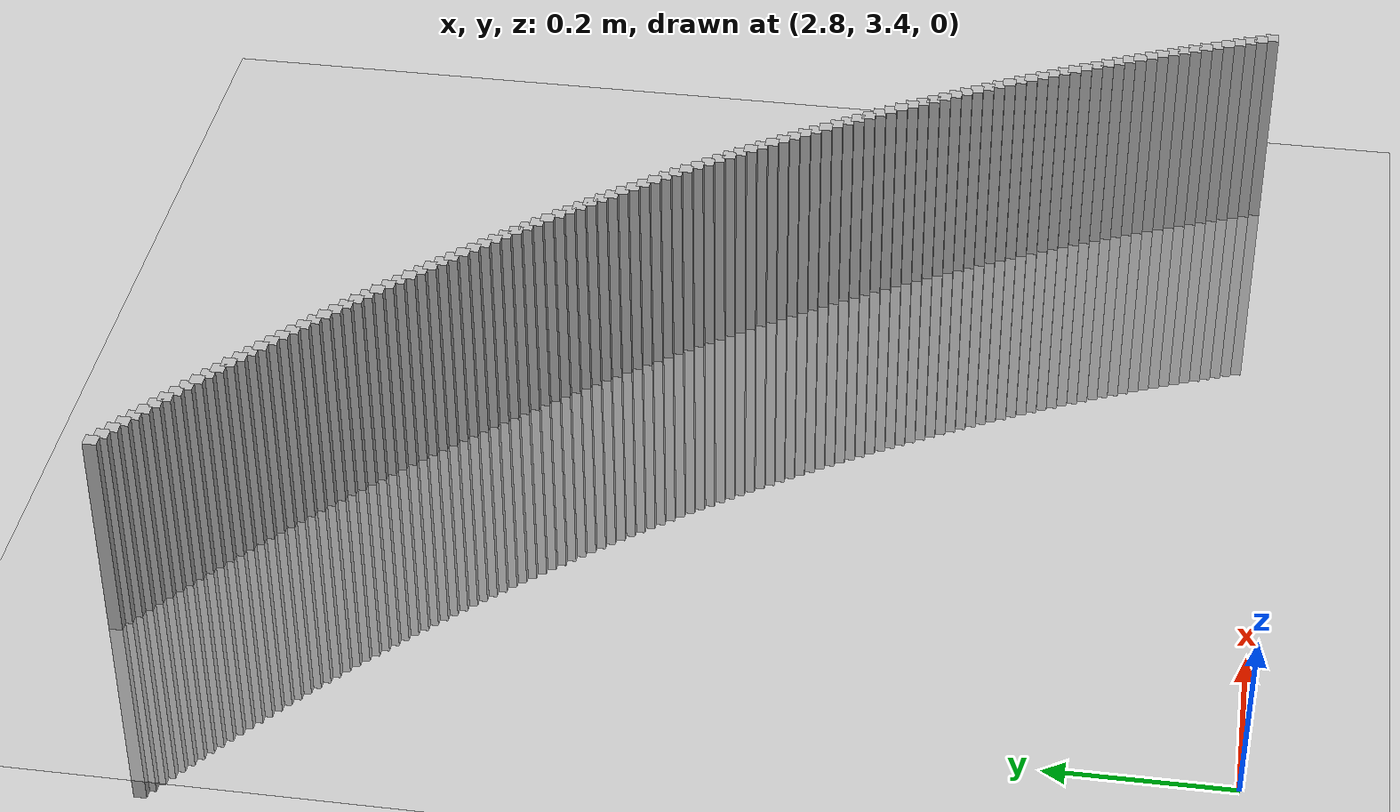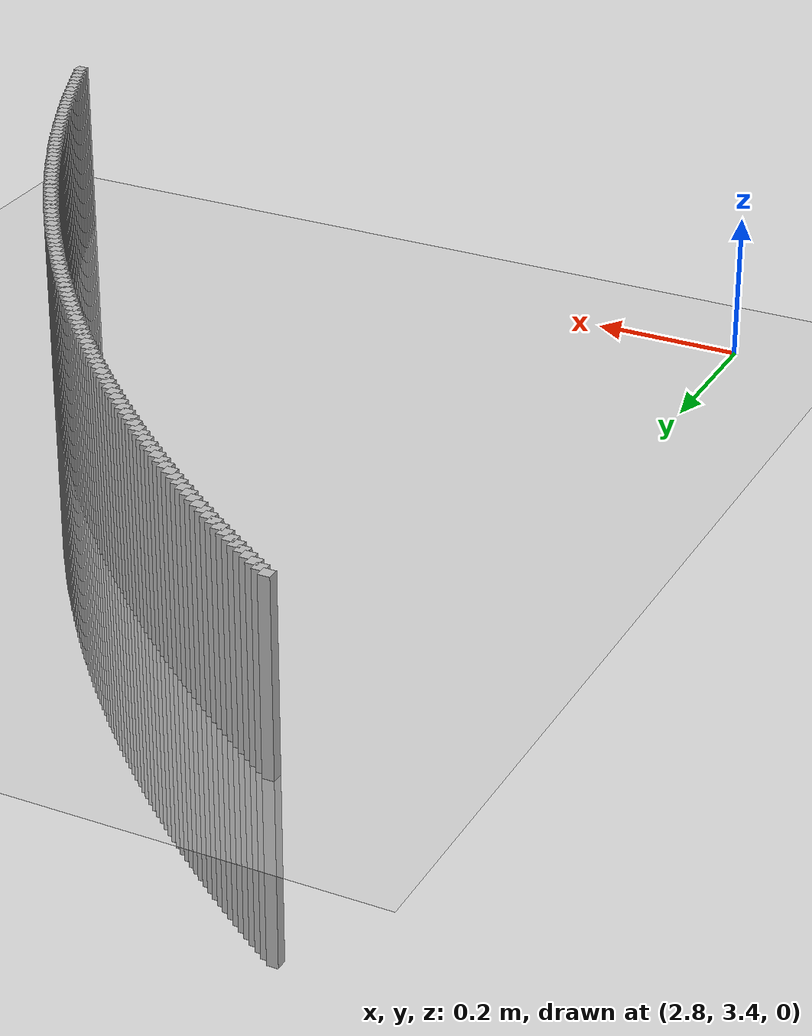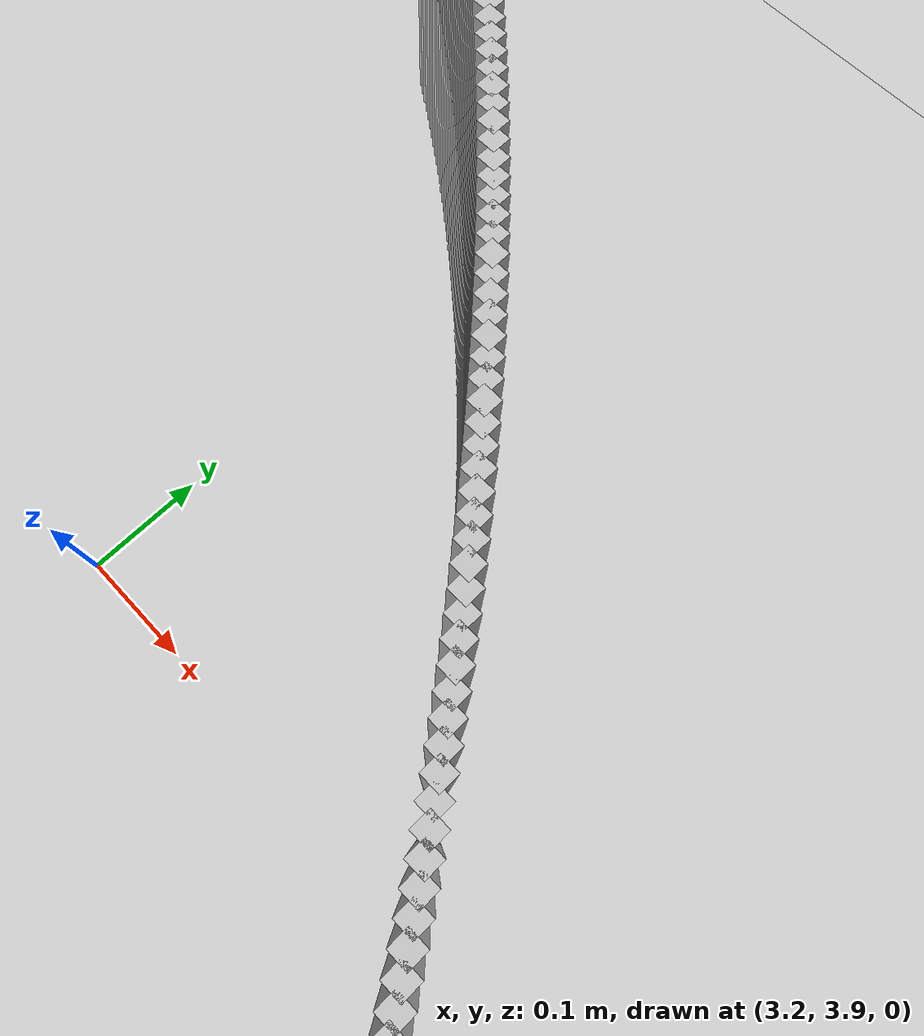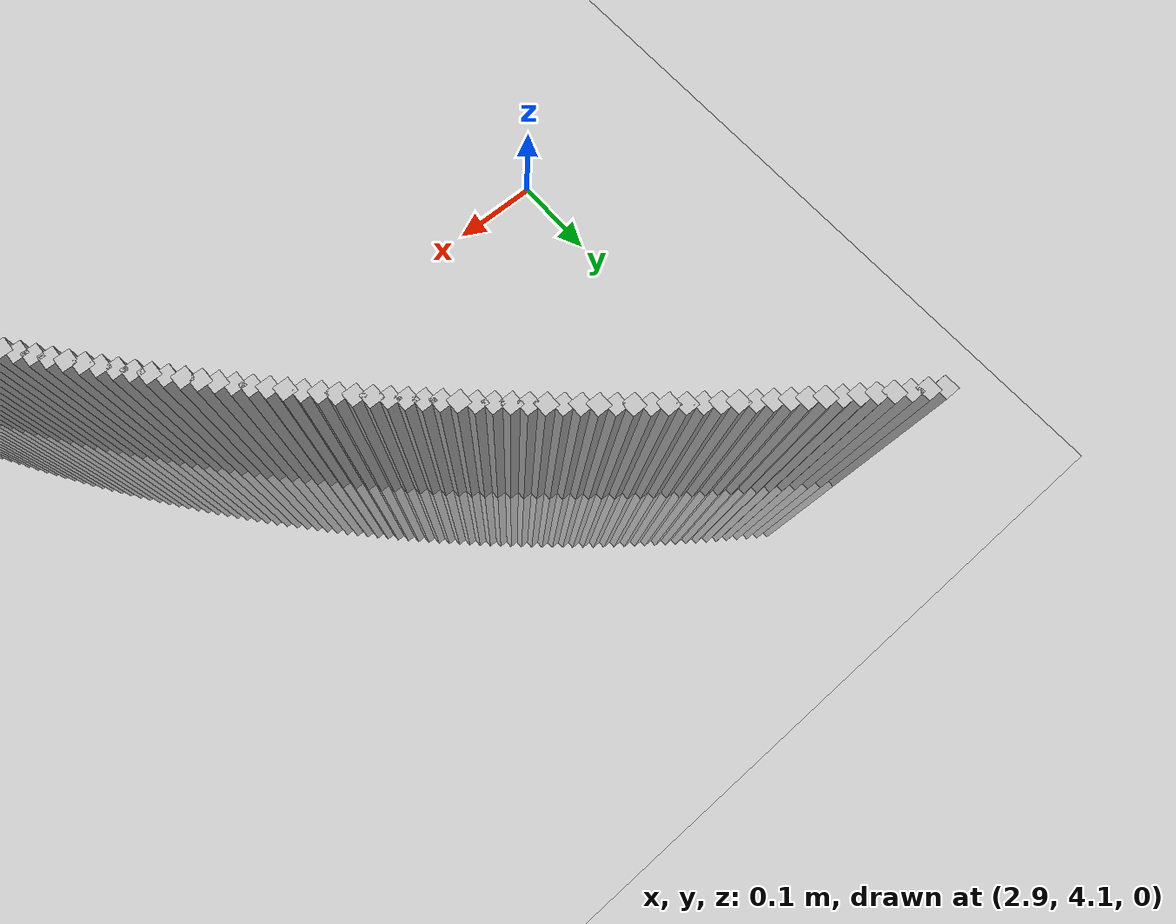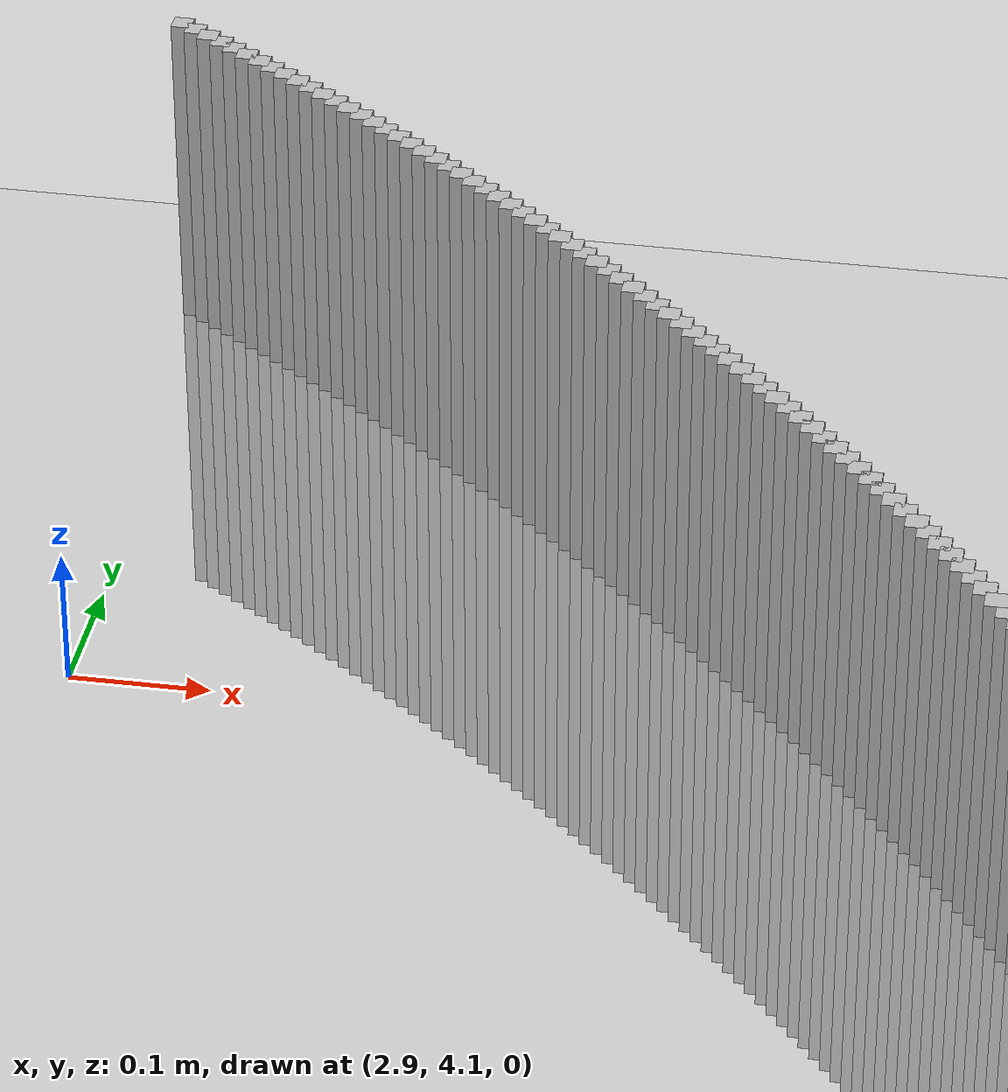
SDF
<sdf version="1.6">
 <world name="base">
  <model name="ground_plane">
   <static>1</static>
   <link name="link">
    <collision name="collision">
     <geometry><plane><normal>0 0 1</normal><size>100 100</size></plane></geometry>
     <surface>
      <contact><collide_bitmask>65535</collide_bitmask></contact>
      <friction><ode><mu>100</mu><mu2>50</mu2></ode></friction>
     </surface>
    </collision>
    <visual name="visual">
     <cast_shadows>0</cast_shadows>
     <geometry><plane><normal>0 0 1</normal><size>100 100</size></plane></geometry>
     <material>
      <script><uri>file://media/materials/scripts/gazebo.material</uri><name>Gazebo/Grey</name></script>
     </material>
    </visual>
   </link>
  </model>
  <model name="k404">
   <link name="113_link">
    <collision name="collision_113">
     <pose>2.87702 4.58658 0 0 -0 0</pose>
     <geometry><box><size>0.015 0.015 0.5</size></box></geometry>
    </collision>
    <visual name="visual_113">
     <pose>2.87702 4.58658 0 0 -0 0</pose>
     <geometry><box><size>0.015 0.015 0.5</size></box></geometry>
    </visual>
   </link>
   <link name="114_link">
    <collision name="collision_114">
     <pose>2.88859 4.5789 0 0 -0 0</pose>
     <geometry><box><size>0.015 0.015 0.5</size></box></geometry>
    </collision>
    <visual name="visual_114">
     <pose>2.88859 4.5789 0 0 -0 0</pose>
     <geometry><box><size>0.015 0.015 0.5</size></box></geometry>
    </visual>
   </link>
   <link name="115_link">
    <collision name="collision_115">
     <pose>2.90012 4.57115 0 0 -0 0</pose>
     <geometry><box><size>0.015 0.015 0.5</size></box></geometry>
    </collision>
    <visual name="visual_115">
     <pose>2.90012 4.57115 0 0 -0 0</pose>
     <geometry><box><size>0.015 0.015 0.5</size></box></geometry>
    </visual>
   </link>
   <link name="116_link">
    <collision name="collision_116">
     <pose>2.91161 4.56334 0 0 -0 0</pose>
     <geometry><box><size>0.015 0.015 0.5</size></box></geometry>
    </collision>
    <visual name="visual_116">
     <pose>2.91161 4.56334 0 0 -0 0</pose>
     <geometry><box><size>0.015 0.015 0.5</size></box></geometry>
    </visual>
   </link>
   <link name="117_link">
    <collision name="collision_117">
     <pose>2.92305 4.55546 0 0 -0 0</pose>
     <geometry><box><size>0.015 0.015 0.5</size></box></geometry>
    </collision>
    <visual name="visual_117">
     <pose>2.92305 4.55546 0 0 -0 0</pose>
     <geometry><box><size>0.015 0.015 0.5</size></box></geometry>
    </visual>
   </link>
   <link name="118_link">
    <collision name="collision_118">
     <pose>2.93445 4.54753 0 0 -0 0</pose>
     <geometry><box><size>0.015 0.015 0.5</size></box></geometry>
    </collision>
    <visual name="visual_118">
     <pose>2.93445 4.54753 0 0 -0 0</pose>
     <geometry><box><size>0.015 0.015 0.5</size></box></geometry>
    </visual>
   </link>
   <link name="119_link">
    <collision name="collision_119">
     <pose>2.9458 4.53953 0 0 -0 0</pose>
     <geometry><box><size>0.015 0.015 0.5</size></box></geometry>
    </collision>
    <visual name="visual_119">
     <pose>2.9458 4.53953 0 0 -0 0</pose>
     <geometry><box><size>0.015 0.015 0.5</size></box></geometry>
    </visual>
   </link>
   <link name="120_link">
    <collision name="collision_120">
     <pose>2.95711 4.53146 0 0 -0 0</pose>
     <geometry><box><size>0.015 0.015 0.5</size></box></geometry>
    </collision>
    <visual name="visual_120">
     <pose>2.95711 4.53146 0 0 -0 0</pose>
     <geometry><box><size>0.015 0.015 0.5</size></box></geometry>
    </visual>
   </link>
   <link name="121_link">
    <collision name="collision_121">
     <pose>2.96837 4.52334 0 0 -0 0</pose>
     <geometry><box><size>0.015 0.015 0.5</size></box></geometry>
    </collision>
    <visual name="visual_121">
     <pose>2.96837 4.52334 0 0 -0 0</pose>
     <geometry><box><size>0.015 0.015 0.5</size></box></geometry>
    </visual>
   </link>
   <link name="122_link">
    <collision name="collision_122">
     <pose>2.97959 4.51515 0 0 -0 0</pose>
     <geometry><box><size>0.015 0.015 0.5</size></box></geometry>
    </collision>
    <visual name="visual_122">
     <pose>2.97959 4.51515 0 0 -0 0</pose>
     <geometry><box><size>0.015 0.015 0.5</size></box></geometry>
    </visual>
   </link>
   <link name="123_link">
    <collision name="collision_123">
     <pose>2.99076 4.5069 0 0 -0 0</pose>
     <geometry><box><size>0.015 0.015 0.5</size></box></geometry>
    </collision>
    <visual name="visual_123">
     <pose>2.99076 4.5069 0 0 -0 0</pose>
     <geometry><box><size>0.015 0.015 0.5</size></box></geometry>
    </visual>
   </link>
   <link name="124_link">
    <collision name="collision_124">
     <pose>3.00189 4.49858 0 0 -0 0</pose>
     <geometry><box><size>0.015 0.015 0.5</size></box></geometry>
    </collision>
    <visual name="visual_124">
     <pose>3.00189 4.49858 0 0 -0 0</pose>
     <geometry><box><size>0.015 0.015 0.5</size></box></geometry>
    </visual>
   </link>
   <link name="125_link">
    <collision name="collision_125">
     <pose>3.01297 4.49021 0 0 -0 0</pose>
     <geometry><box><size>0.015 0.015 0.5</size></box></geometry>
    </collision>
    <visual name="visual_125">
     <pose>3.01297 4.49021 0 0 -0 0</pose>
     <geometry><box><size>0.015 0.015 0.5</size></box></geometry>
    </visual>
   </link>
   <link name="126_link">
    <collision name="collision_126">
     <pose>3.024 4.48177 0 0 -0 0</pose>
     <geometry><box><size>0.015 0.015 0.5</size></box></geometry>
    </collision>
    <visual name="visual_126">
     <pose>3.024 4.48177 0 0 -0 0</pose>
     <geometry><box><size>0.015 0.015 0.5</size></box></geometry>
    </visual>
   </link>
   <link name="127_link">
    <collision name="collision_127">
     <pose>3.03499 4.47328 0 0 -0 0</pose>
     <geometry><box><size>0.015 0.015 0.5</size></box></geometry>
    </collision>
    <visual name="visual_127">
     <pose>3.03499 4.47328 0 0 -0 0</pose>
     <geometry><box><size>0.015 0.015 0.5</size></box></geometry>
    </visual>
   </link>
   <link name="128_link">
    <collision name="collision_128">
     <pose>3.04592 4.46472 0 0 -0 0</pose>
     <geometry><box><size>0.015 0.015 0.5</size></box></geometry>
    </collision>
    <visual name="visual_128">
     <pose>3.04592 4.46472 0 0 -0 0</pose>
     <geometry><box><size>0.015 0.015 0.5</size></box></geometry>
    </visual>
   </link>
   <link name="129_link">
    <collision name="collision_129">
     <pose>3.05682 4.4561 0 0 -0 0</pose>
     <geometry><box><size>0.015 0.015 0.5</size></box></geometry>
    </collision>
    <visual name="visual_129">
     <pose>3.05682 4.4561 0 0 -0 0</pose>
     <geometry><box><size>0.015 0.015 0.5</size></box></geometry>
    </visual>
   </link>
   <link name="130_link">
    <collision name="collision_130">
     <pose>3.06766 4.44742 0 0 -0 0</pose>
     <geometry><box><size>0.015 0.015 0.5</size></box></geometry>
    </collision>
    <visual name="visual_130">
     <pose>3.06766 4.44742 0 0 -0 0</pose>
     <geometry><box><size>0.015 0.015 0.5</size></box></geometry>
    </visual>
   </link>
   <link name="131_link">
    <collision name="collision_131">
     <pose>3.07845 4.43868 0 0 -0 0</pose>
     <geometry><box><size>0.015 0.015 0.5</size></box></geometry>
    </collision>
    <visual name="visual_131">
     <pose>3.07845 4.43868 0 0 -0 0</pose>
     <geometry><box><size>0.015 0.015 0.5</size></box></geometry>
    </visual>
   </link>
   <link name="132_link">
    <collision name="collision_132">
     <pose>3.0892 4.42988 0 0 -0 0</pose>
     <geometry><box><size>0.015 0.015 0.5</size></box></geometry>
    </collision>
    <visual name="visual_132">
     <pose>3.0892 4.42988 0 0 -0 0</pose>
     <geometry><box><size>0.015 0.015 0.5</size></box></geometry>
    </visual>
   </link>
   <link name="133_link">
    <collision name="collision_133">
     <pose>3.0999 4.42102 0 0 -0 0</pose>
     <geometry><box><size>0.015 0.015 0.5</size></box></geometry>
    </collision>
    <visual name="visual_133">
     <pose>3.0999 4.42102 0 0 -0 0</pose>
     <geometry><box><size>0.015 0.015 0.5</size></box></geometry>
    </visual>
   </link>
   <link name="134_link">
    <collision name="collision_134">
     <pose>3.11054 4.41211 0 0 -0 0</pose>
     <geometry><box><size>0.015 0.015 0.5</size></box></geometry>
    </collision>
    <visual name="visual_134">
     <pose>3.11054 4.41211 0 0 -0 0</pose>
     <geometry><box><size>0.015 0.015 0.5</size></box></geometry>
    </visual>
   </link>
   <link name="135_link">
    <collision name="collision_135">
     <pose>3.12114 4.40313 0 0 -0 0</pose>
     <geometry><box><size>0.015 0.015 0.5</size></box></geometry>
    </collision>
    <visual name="visual_135">
     <pose>3.12114 4.40313 0 0 -0 0</pose>
     <geometry><box><size>0.015 0.015 0.5</size></box></geometry>
    </visual>
   </link>
   <link name="136_link">
    <collision name="collision_136">
     <pose>3.13169 4.39409 0 0 -0 0</pose>
     <geometry><box><size>0.015 0.015 0.5</size></box></geometry>
    </collision>
    <visual name="visual_136">
     <pose>3.13169 4.39409 0 0 -0 0</pose>
     <geometry><box><size>0.015 0.015 0.5</size></box></geometry>
    </visual>
   </link>
   <link name="137_link">
    <collision name="collision_137">
     <pose>3.14219 4.385 0 0 -0 0</pose>
     <geometry><box><size>0.015 0.015 0.5</size></box></geometry>
    </collision>
    <visual name="visual_137">
     <pose>3.14219 4.385 0 0 -0 0</pose>
     <geometry><box><size>0.015 0.015 0.5</size></box></geometry>
    </visual>
   </link>
   <link name="138_link">
    <collision name="collision_138">
     <pose>3.15263 4.37585 0 0 -0 0</pose>
     <geometry><box><size>0.015 0.015 0.5</size></box></geometry>
    </collision>
    <visual name="visual_138">
     <pose>3.15263 4.37585 0 0 -0 0</pose>
     <geometry><box><size>0.015 0.015 0.5</size></box></geometry>
    </visual>
   </link>
   <link name="139_link">
    <collision name="collision_139">
     <pose>3.16303 4.36664 0 0 -0 0</pose>
     <geometry><box><size>0.015 0.015 0.5</size></box></geometry>
    </collision>
    <visual name="visual_139">
     <pose>3.16303 4.36664 0 0 -0 0</pose>
     <geometry><box><size>0.015 0.015 0.5</size></box></geometry>
    </visual>
   </link>
   <link name="140_link">
    <collision name="collision_140">
     <pose>3.17338 4.35737 0 0 -0 0</pose>
     <geometry><box><size>0.015 0.015 0.5</size></box></geometry>
    </collision>
    <visual name="visual_140">
     <pose>3.17338 4.35737 0 0 -0 0</pose>
     <geometry><box><size>0.015 0.015 0.5</size></box></geometry>
    </visual>
   </link>
   <link name="141_link">
    <collision name="collision_141">
     <pose>3.18367 4.34804 0 0 -0 0</pose>
     <geometry><box><size>0.015 0.015 0.5</size></box></geometry>
    </collision>
    <visual name="visual_141">
     <pose>3.18367 4.34804 0 0 -0 0</pose>
     <geometry><box><size>0.015 0.015 0.5</size></box></geometry>
    </visual>
   </link>
   <link name="142_link">
    <collision name="collision_142">
     <pose>3.19391 4.33866 0 0 -0 0</pose>
     <geometry><box><size>0.015 0.015 0.5</size></box></geometry>
    </collision>
    <visual name="visual_142">
     <pose>3.19391 4.33866 0 0 -0 0</pose>
     <geometry><box><size>0.015 0.015 0.5</size></box></geometry>
    </visual>
   </link>
   <link name="143_link">
    <collision name="collision_143">
     <pose>3.2041 4.32922 0 0 -0 0</pose>
     <geometry><box><size>0.015 0.015 0.5</size></box></geometry>
    </collision>
    <visual name="visual_143">
     <pose>3.2041 4.32922 0 0 -0 0</pose>
     <geometry><box><size>0.015 0.015 0.5</size></box></geometry>
    </visual>
   </link>
   <link name="144_link">
    <collision name="collision_144">
     <pose>3.21423 4.31973 0 0 -0 0</pose>
     <geometry><box><size>0.015 0.015 0.5</size></box></geometry>
    </collision>
    <visual name="visual_144">
     <pose>3.21423 4.31973 0 0 -0 0</pose>
     <geometry><box><size>0.015 0.015 0.5</size></box></geometry>
    </visual>
   </link>
   <link name="145_link">
    <collision name="collision_145">
     <pose>3.22432 4.31018 0 0 -0 0</pose>
     <geometry><box><size>0.015 0.015 0.5</size></box></geometry>
    </collision>
    <visual name="visual_145">
     <pose>3.22432 4.31018 0 0 -0 0</pose>
     <geometry><box><size>0.015 0.015 0.5</size></box></geometry>
    </visual>
   </link>
   <link name="146_link">
    <collision name="collision_146">
     <pose>3.23435 4.30057 0 0 -0 0</pose>
     <geometry><box><size>0.015 0.015 0.5</size></box></geometry>
    </collision>
    <visual name="visual_146">
     <pose>3.23435 4.30057 0 0 -0 0</pose>
     <geometry><box><size>0.015 0.015 0.5</size></box></geometry>
    </visual>
   </link>
   <link name="147_link">
    <collision name="collision_147">
     <pose>3.24432 4.29091 0 0 -0 0</pose>
     <geometry><box><size>0.015 0.015 0.5</size></box></geometry>
    </collision>
    <visual name="visual_147">
     <pose>3.24432 4.29091 0 0 -0 0</pose>
     <geometry><box><size>0.015 0.015 0.5</size></box></geometry>
    </visual>
   </link>
   <link name="148_link">
    <collision name="collision_148">
     <pose>3.25425 4.28119 0 0 -0 0</pose>
     <geometry><box><size>0.015 0.015 0.5</size></box></geometry>
    </collision>
    <visual name="visual_148">
     <pose>3.25425 4.28119 0 0 -0 0</pose>
     <geometry><box><size>0.015 0.015 0.5</size></box></geometry>
    </visual>
   </link>
   <link name="149_link">
    <collision name="collision_149">
     <pose>3.26411 4.27141 0 0 -0 0</pose>
     <geometry><box><size>0.015 0.015 0.5</size></box></geometry>
    </collision>
    <visual name="visual_149">
     <pose>3.26411 4.27141 0 0 -0 0</pose>
     <geometry><box><size>0.015 0.015 0.5</size></box></geometry>
    </visual>
   </link>
   <link name="150_link">
    <collision name="collision_150">
     <pose>3.27393 4.26159 0 0 -0 0</pose>
     <geometry><box><size>0.015 0.015 0.5</size></box></geometry>
    </collision>
    <visual name="visual_150">
     <pose>3.27393 4.26159 0 0 -0 0</pose>
     <geometry><box><size>0.015 0.015 0.5</size></box></geometry>
    </visual>
   </link>
   <link name="151_link">
    <collision name="collision_151">
     <pose>3.28369 4.2517 0 0 -0 0</pose>
     <geometry><box><size>0.015 0.015 0.5</size></box></geometry>
    </collision>
    <visual name="visual_151">
     <pose>3.28369 4.2517 0 0 -0 0</pose>
     <geometry><box><size>0.015 0.015 0.5</size></box></geometry>
    </visual>
   </link>
   <link name="152_link">
    <collision name="collision_152">
     <pose>3.29339 4.24177 0 0 -0 0</pose>
     <geometry><box><size>0.015 0.015 0.5</size></box></geometry>
    </collision>
    <visual name="visual_152">
     <pose>3.29339 4.24177 0 0 -0 0</pose>
     <geometry><box><size>0.015 0.015 0.5</size></box></geometry>
    </visual>
   </link>
   <link name="153_link">
    <collision name="collision_153">
     <pose>3.30304 4.23178 0 0 -0 0</pose>
     <geometry><box><size>0.015 0.015 0.5</size></box></geometry>
    </collision>
    <visual name="visual_153">
     <pose>3.30304 4.23178 0 0 -0 0</pose>
     <geometry><box><size>0.015 0.015 0.5</size></box></geometry>
    </visual>
   </link>
   <link name="154_link">
    <collision name="collision_154">
     <pose>3.31263 4.22173 0 0 -0 0</pose>
     <geometry><box><size>0.015 0.015 0.5</size></box></geometry>
    </collision>
    <visual name="visual_154">
     <pose>3.31263 4.22173 0 0 -0 0</pose>
     <geometry><box><size>0.015 0.015 0.5</size></box></geometry>
    </visual>
   </link>
   <link name="155_link">
    <collision name="collision_155">
     <pose>3.32217 4.21164 0 0 -0 0</pose>
     <geometry><box><size>0.015 0.015 0.5</size></box></geometry>
    </collision>
    <visual name="visual_155">
     <pose>3.32217 4.21164 0 0 -0 0</pose>
     <geometry><box><size>0.015 0.015 0.5</size></box></geometry>
    </visual>
   </link>
   <link name="156_link">
    <collision name="collision_156">
     <pose>3.33165 4.20149 0 0 -0 0</pose>
     <geometry><box><size>0.015 0.015 0.5</size></box></geometry>
    </collision>
    <visual name="visual_156">
     <pose>3.33165 4.20149 0 0 -0 0</pose>
     <geometry><box><size>0.015 0.015 0.5</size></box></geometry>
    </visual>
   </link>
   <link name="157_link">
    <collision name="collision_157">
     <pose>3.34108 4.19128 0 0 -0 0</pose>
     <geometry><box><size>0.015 0.015 0.5</size></box></geometry>
    </collision>
    <visual name="visual_157">
     <pose>3.34108 4.19128 0 0 -0 0</pose>
     <geometry><box><size>0.015 0.015 0.5</size></box></geometry>
    </visual>
   </link>
   <link name="158_link">
    <collision name="collision_158">
     <pose>3.35044 4.18103 0 0 -0 0</pose>
     <geometry><box><size>0.015 0.015 0.5</size></box></geometry>
    </collision>
    <visual name="visual_158">
     <pose>3.35044 4.18103 0 0 -0 0</pose>
     <geometry><box><size>0.015 0.015 0.5</size></box></geometry>
    </visual>
   </link>
   <link name="159_link">
    <collision name="collision_159">
     <pose>3.35975 4.17072 0 0 -0 0</pose>
     <geometry><box><size>0.015 0.015 0.5</size></box></geometry>
    </collision>
    <visual name="visual_159">
     <pose>3.35975 4.17072 0 0 -0 0</pose>
     <geometry><box><size>0.015 0.015 0.5</size></box></geometry>
    </visual>
   </link>
   <link name="160_link">
    <collision name="collision_160">
     <pose>3.36901 4.16037 0 0 -0 0</pose>
     <geometry><box><size>0.015 0.015 0.5</size></box></geometry>
    </collision>
    <visual name="visual_160">
     <pose>3.36901 4.16037 0 0 -0 0</pose>
     <geometry><box><size>0.015 0.015 0.5</size></box></geometry>
    </visual>
   </link>
   <link name="161_link">
    <collision name="collision_161">
     <pose>3.3782 4.14996 0 0 -0 0</pose>
     <geometry><box><size>0.015 0.015 0.5</size></box></geometry>
    </collision>
    <visual name="visual_161">
     <pose>3.3782 4.14996 0 0 -0 0</pose>
     <geometry><box><size>0.015 0.015 0.5</size></box></geometry>
    </visual>
   </link>
   <link name="162_link">
    <collision name="collision_162">
     <pose>3.38734 4.1395 0 0 -0 0</pose>
     <geometry><box><size>0.015 0.015 0.5</size></box></geometry>
    </collision>
    <visual name="visual_162">
     <pose>3.38734 4.1395 0 0 -0 0</pose>
     <geometry><box><size>0.015 0.015 0.5</size></box></geometry>
    </visual>
   </link>
   <link name="163_link">
    <collision name="collision_163">
     <pose>3.39642 4.12899 0 0 -0 0</pose>
     <geometry><box><size>0.015 0.015 0.5</size></box></geometry>
    </collision>
    <visual name="visual_163">
     <pose>3.39642 4.12899 0 0 -0 0</pose>
     <geometry><box><size>0.015 0.015 0.5</size></box></geometry>
    </visual>
   </link>
   <link name="164_link">
    <collision name="collision_164">
     <pose>3.40544 4.11843 0 0 -0 0</pose>
     <geometry><box><size>0.015 0.015 0.5</size></box></geometry>
    </collision>
    <visual name="visual_164">
     <pose>3.40544 4.11843 0 0 -0 0</pose>
     <geometry><box><size>0.015 0.015 0.5</size></box></geometry>
    </visual>
   </link>
   <link name="165_link">
    <collision name="collision_165">
     <pose>3.4144 4.10782 0 0 -0 0</pose>
     <geometry><box><size>0.015 0.015 0.5</size></box></geometry>
    </collision>
    <visual name="visual_165">
     <pose>3.4144 4.10782 0 0 -0 0</pose>
     <geometry><box><size>0.015 0.015 0.5</size></box></geometry>
    </visual>
   </link>
   <link name="166_link">
    <collision name="collision_166">
     <pose>3.4233 4.09716 0 0 -0 0</pose>
     <geometry><box><size>0.015 0.015 0.5</size></box></geometry>
    </collision>
    <visual name="visual_166">
     <pose>3.4233 4.09716 0 0 -0 0</pose>
     <geometry><box><size>0.015 0.015 0.5</size></box></geometry>
    </visual>
   </link>
   <link name="167_link">
    <collision name="collision_167">
     <pose>3.43215 4.08645 0 0 -0 0</pose>
     <geometry><box><size>0.015 0.015 0.5</size></box></geometry>
    </collision>
    <visual name="visual_167">
     <pose>3.43215 4.08645 0 0 -0 0</pose>
     <geometry><box><size>0.015 0.015 0.5</size></box></geometry>
    </visual>
   </link>
   <link name="168_link">
    <collision name="collision_168">
     <pose>3.44093 4.07569 0 0 -0 0</pose>
     <geometry><box><size>0.015 0.015 0.5</size></box></geometry>
    </collision>
    <visual name="visual_168">
     <pose>3.44093 4.07569 0 0 -0 0</pose>
     <geometry><box><size>0.015 0.015 0.5</size></box></geometry>
    </visual>
   </link>
   <link name="169_link">
    <collision name="collision_169">
     <pose>3.44965 4.06488 0 0 -0 0</pose>
     <geometry><box><size>0.015 0.015 0.5</size></box></geometry>
    </collision>
    <visual name="visual_169">
     <pose>3.44965 4.06488 0 0 -0 0</pose>
     <geometry><box><size>0.015 0.015 0.5</size></box></geometry>
    </visual>
   </link>
   <link name="170_link">
    <collision name="collision_170">
     <pose>3.45832 4.05403 0 0 -0 0</pose>
     <geometry><box><size>0.015 0.015 0.5</size></box></geometry>
    </collision>
    <visual name="visual_170">
     <pose>3.45832 4.05403 0 0 -0 0</pose>
     <geometry><box><size>0.015 0.015 0.5</size></box></geometry>
    </visual>
   </link>
   <link name="171_link">
    <collision name="collision_171">
     <pose>3.46692 4.04312 0 0 -0 0</pose>
     <geometry><box><size>0.015 0.015 0.5</size></box></geometry>
    </collision>
    <visual name="visual_171">
     <pose>3.46692 4.04312 0 0 -0 0</pose>
     <geometry><box><size>0.015 0.015 0.5</size></box></geometry>
    </visual>
   </link>
   <link name="172_link">
    <collision name="collision_172">
     <pose>3.47546 4.03217 0 0 -0 0</pose>
     <geometry><box><size>0.015 0.015 0.5</size></box></geometry>
    </collision>
    <visual name="visual_172">
     <pose>3.47546 4.03217 0 0 -0 0</pose>
     <geometry><box><size>0.015 0.015 0.5</size></box></geometry>
    </visual>
   </link>
   <link name="173_link">
    <collision name="collision_173">
     <pose>3.48394 4.02117 0 0 -0 0</pose>
     <geometry><box><size>0.015 0.015 0.5</size></box></geometry>
    </collision>
    <visual name="visual_173">
     <pose>3.48394 4.02117 0 0 -0 0</pose>
     <geometry><box><size>0.015 0.015 0.5</size></box></geometry>
    </visual>
   </link>
   <link name="174_link">
    <collision name="collision_174">
     <pose>3.49236 4.01013 0 0 -0 0</pose>
     <geometry><box><size>0.015 0.015 0.5</size></box></geometry>
    </collision>
    <visual name="visual_174">
     <pose>3.49236 4.01013 0 0 -0 0</pose>
     <geometry><box><size>0.015 0.015 0.5</size></box></geometry>
    </visual>
   </link>
   <link name="175_link">
    <collision name="collision_175">
     <pose>3.50072 3.99904 0 0 -0 0</pose>
     <geometry><box><size>0.015 0.015 0.5</size></box></geometry>
    </collision>
    <visual name="visual_175">
     <pose>3.50072 3.99904 0 0 -0 0</pose>
     <geometry><box><size>0.015 0.015 0.5</size></box></geometry>
    </visual>
   </link>
   <link name="176_link">
    <collision name="collision_176">
     <pose>3.50902 3.9879 0 0 -0 0</pose>
     <geometry><box><size>0.015 0.015 0.5</size></box></geometry>
    </collision>
    <visual name="visual_176">
     <pose>3.50902 3.9879 0 0 -0 0</pose>
     <geometry><box><size>0.015 0.015 0.5</size></box></geometry>
    </visual>
   </link>
   <link name="177_link">
    <collision name="collision_177">
     <pose>3.51726 3.97671 0 0 -0 0</pose>
     <geometry><box><size>0.015 0.015 0.5</size></box></geometry>
    </collision>
    <visual name="visual_177">
     <pose>3.51726 3.97671 0 0 -0 0</pose>
     <geometry><box><size>0.015 0.015 0.5</size></box></geometry>
    </visual>
   </link>
   <link name="178_link">
    <collision name="collision_178">
     <pose>3.52543 3.96548 0 0 -0 0</pose>
     <geometry><box><size>0.015 0.015 0.5</size></box></geometry>
    </collision>
    <visual name="visual_178">
     <pose>3.52543 3.96548 0 0 -0 0</pose>
     <geometry><box><size>0.015 0.015 0.5</size></box></geometry>
    </visual>
   </link>
   <link name="179_link">
    <collision name="collision_179">
     <pose>3.53354 3.95421 0 0 -0 0</pose>
     <geometry><box><size>0.015 0.015 0.5</size></box></geometry>
    </collision>
    <visual name="visual_179">
     <pose>3.53354 3.95421 0 0 -0 0</pose>
     <geometry><box><size>0.015 0.015 0.5</size></box></geometry>
    </visual>
   </link>
   <link name="180_link">
    <collision name="collision_180">
     <pose>3.54159 3.94289 0 0 -0 0</pose>
     <geometry><box><size>0.015 0.015 0.5</size></box></geometry>
    </collision>
    <visual name="visual_180">
     <pose>3.54159 3.94289 0 0 -0 0</pose>
     <geometry><box><size>0.015 0.015 0.5</size></box></geometry>
    </visual>
   </link>
   <link name="181_link">
    <collision name="collision_181">
     <pose>3.54957 3.93152 0 0 -0 0</pose>
     <geometry><box><size>0.015 0.015 0.5</size></box></geometry>
    </collision>
    <visual name="visual_181">
     <pose>3.54957 3.93152 0 0 -0 0</pose>
     <geometry><box><size>0.015 0.015 0.5</size></box></geometry>
    </visual>
   </link>
   <link name="182_link">
    <collision name="collision_182">
     <pose>3.55749 3.92012 0 0 -0 0</pose>
     <geometry><box><size>0.015 0.015 0.5</size></box></geometry>
    </collision>
    <visual name="visual_182">
     <pose>3.55749 3.92012 0 0 -0 0</pose>
     <geometry><box><size>0.015 0.015 0.5</size></box></geometry>
    </visual>
   </link>
   <link name="183_link">
    <collision name="collision_183">
     <pose>3.56535 3.90866 0 0 -0 0</pose>
     <geometry><box><size>0.015 0.015 0.5</size></box></geometry>
    </collision>
    <visual name="visual_183">
     <pose>3.56535 3.90866 0 0 -0 0</pose>
     <geometry><box><size>0.015 0.015 0.5</size></box></geometry>
    </visual>
   </link>
   <link name="184_link">
    <collision name="collision_184">
     <pose>3.57314 3.89717 0 0 -0 0</pose>
     <geometry><box><size>0.015 0.015 0.5</size></box></geometry>
    </collision>
    <visual name="visual_184">
     <pose>3.57314 3.89717 0 0 -0 0</pose>
     <geometry><box><size>0.015 0.015 0.5</size></box></geometry>
    </visual>
   </link>
   <link name="185_link">
    <collision name="collision_185">
     <pose>3.58087 3.88563 0 0 -0 0</pose>
     <geometry><box><size>0.015 0.015 0.5</size></box></geometry>
    </collision>
    <visual name="visual_185">
     <pose>3.58087 3.88563 0 0 -0 0</pose>
     <geometry><box><size>0.015 0.015 0.5</size></box></geometry>
    </visual>
   </link>
   <link name="186_link">
    <collision name="collision_186">
     <pose>3.58854 3.87405 0 0 -0 0</pose>
     <geometry><box><size>0.015 0.015 0.5</size></box></geometry>
    </collision>
    <visual name="visual_186">
     <pose>3.58854 3.87405 0 0 -0 0</pose>
     <geometry><box><size>0.015 0.015 0.5</size></box></geometry>
    </visual>
   </link>
   <link name="187_link">
    <collision name="collision_187">
     <pose>3.59614 3.86242 0 0 -0 0</pose>
     <geometry><box><size>0.015 0.015 0.5</size></box></geometry>
    </collision>
    <visual name="visual_187">
     <pose>3.59614 3.86242 0 0 -0 0</pose>
     <geometry><box><size>0.015 0.015 0.5</size></box></geometry>
    </visual>
   </link>
   <link name="188_link">
    <collision name="collision_188">
     <pose>3.60368 3.85076 0 0 -0 0</pose>
     <geometry><box><size>0.015 0.015 0.5</size></box></geometry>
    </collision>
    <visual name="visual_188">
     <pose>3.60368 3.85076 0 0 -0 0</pose>
     <geometry><box><size>0.015 0.015 0.5</size></box></geometry>
    </visual>
   </link>
   <link name="189_link">
    <collision name="collision_189">
     <pose>3.61115 3.83905 0 0 -0 0</pose>
     <geometry><box><size>0.015 0.015 0.5</size></box></geometry>
    </collision>
    <visual name="visual_189">
     <pose>3.61115 3.83905 0 0 -0 0</pose>
     <geometry><box><size>0.015 0.015 0.5</size></box></geometry>
    </visual>
   </link>
   <link name="190_link">
    <collision name="collision_190">
     <pose>3.61856 3.8273 0 0 -0 0</pose>
     <geometry><box><size>0.015 0.015 0.5</size></box></geometry>
    </collision>
    <visual name="visual_190">
     <pose>3.61856 3.8273 0 0 -0 0</pose>
     <geometry><box><size>0.015 0.015 0.5</size></box></geometry>
    </visual>
   </link>
   <link name="191_link">
    <collision name="collision_191">
     <pose>3.6259 3.81551 0 0 -0 0</pose>
     <geometry><box><size>0.015 0.015 0.5</size></box></geometry>
    </collision>
    <visual name="visual_191">
     <pose>3.6259 3.81551 0 0 -0 0</pose>
     <geometry><box><size>0.015 0.015 0.5</size></box></geometry>
    </visual>
   </link>
   <link name="192_link">
    <collision name="collision_192">
     <pose>3.63317 3.80368 0 0 -0 0</pose>
     <geometry><box><size>0.015 0.015 0.5</size></box></geometry>
    </collision>
    <visual name="visual_192">
     <pose>3.63317 3.80368 0 0 -0 0</pose>
     <geometry><box><size>0.015 0.015 0.5</size></box></geometry>
    </visual>
   </link>
   <link name="193_link">
    <collision name="collision_193">
     <pose>3.64038 3.79181 0 0 -0 0</pose>
     <geometry><box><size>0.015 0.015 0.5</size></box></geometry>
    </collision>
    <visual name="visual_193">
     <pose>3.64038 3.79181 0 0 -0 0</pose>
     <geometry><box><size>0.015 0.015 0.5</size></box></geometry>
    </visual>
   </link>
   <link name="194_link">
    <collision name="collision_194">
     <pose>3.64753 3.7799 0 0 -0 0</pose>
     <geometry><box><size>0.015 0.015 0.5</size></box></geometry>
    </collision>
    <visual name="visual_194">
     <pose>3.64753 3.7799 0 0 -0 0</pose>
     <geometry><box><size>0.015 0.015 0.5</size></box></geometry>
    </visual>
   </link>
   <link name="195_link">
    <collision name="collision_195">
     <pose>3.6546 3.76795 0 0 -0 0</pose>
     <geometry><box><size>0.015 0.015 0.5</size></box></geometry>
    </collision>
    <visual name="visual_195">
     <pose>3.6546 3.76795 0 0 -0 0</pose>
     <geometry><box><size>0.015 0.015 0.5</size></box></geometry>
    </visual>
   </link>
   <link name="196_link">
    <collision name="collision_196">
     <pose>3.66161 3.75596 0 0 -0 0</pose>
     <geometry><box><size>0.015 0.015 0.5</size></box></geometry>
    </collision>
    <visual name="visual_196">
     <pose>3.66161 3.75596 0 0 -0 0</pose>
     <geometry><box><size>0.015 0.015 0.5</size></box></geometry>
    </visual>
   </link>
   <link name="197_link">
    <collision name="collision_197">
     <pose>3.66856 3.74393 0 0 -0 0</pose>
     <geometry><box><size>0.015 0.015 0.5</size></box></geometry>
    </collision>
    <visual name="visual_197">
     <pose>3.66856 3.74393 0 0 -0 0</pose>
     <geometry><box><size>0.015 0.015 0.5</size></box></geometry>
    </visual>
   </link>
   <link name="198_link">
    <collision name="collision_198">
     <pose>3.67543 3.73186 0 0 -0 0</pose>
     <geometry><box><size>0.015 0.015 0.5</size></box></geometry>
    </collision>
    <visual name="visual_198">
     <pose>3.67543 3.73186 0 0 -0 0</pose>
     <geometry><box><size>0.015 0.015 0.5</size></box></geometry>
    </visual>
   </link>
   <link name="199_link">
    <collision name="collision_199">
     <pose>3.68224 3.71976 0 0 -0 0</pose>
     <geometry><box><size>0.015 0.015 0.5</size></box></geometry>
    </collision>
    <visual name="visual_199">
     <pose>3.68224 3.71976 0 0 -0 0</pose>
     <geometry><box><size>0.015 0.015 0.5</size></box></geometry>
    </visual>
   </link>
   <link name="200_link">
    <collision name="collision_200">
     <pose>3.68899 3.70761 0 0 -0 0</pose>
     <geometry><box><size>0.015 0.015 0.5</size></box></geometry>
    </collision>
    <visual name="visual_200">
     <pose>3.68899 3.70761 0 0 -0 0</pose>
     <geometry><box><size>0.015 0.015 0.5</size></box></geometry>
    </visual>
   </link>
   <link name="201_link">
    <collision name="collision_201">
     <pose>3.69566 3.69543 0 0 -0 0</pose>
     <geometry><box><size>0.015 0.015 0.5</size></box></geometry>
    </collision>
    <visual name="visual_201">
     <pose>3.69566 3.69543 0 0 -0 0</pose>
     <geometry><box><size>0.015 0.015 0.5</size></box></geometry>
    </visual>
   </link>
   <link name="202_link">
    <collision name="collision_202">
     <pose>3.70227 3.68322 0 0 -0 0</pose>
     <geometry><box><size>0.015 0.015 0.5</size></box></geometry>
    </collision>
    <visual name="visual_202">
     <pose>3.70227 3.68322 0 0 -0 0</pose>
     <geometry><box><size>0.015 0.015 0.5</size></box></geometry>
    </visual>
   </link>
   <link name="203_link">
    <collision name="collision_203">
     <pose>3.70881 3.67096 0 0 -0 0</pose>
     <geometry><box><size>0.015 0.015 0.5</size></box></geometry>
    </collision>
    <visual name="visual_203">
     <pose>3.70881 3.67096 0 0 -0 0</pose>
     <geometry><box><size>0.015 0.015 0.5</size></box></geometry>
    </visual>
   </link>
   <link name="204_link">
    <collision name="collision_204">
     <pose>3.71528 3.65868 0 0 -0 0</pose>
     <geometry><box><size>0.015 0.015 0.5</size></box></geometry>
    </collision>
    <visual name="visual_204">
     <pose>3.71528 3.65868 0 0 -0 0</pose>
     <geometry><box><size>0.015 0.015 0.5</size></box></geometry>
    </visual>
   </link>
   <link name="205_link">
    <collision name="collision_205">
     <pose>3.72168 3.64635 0 0 -0 0</pose>
     <geometry><box><size>0.015 0.015 0.5</size></box></geometry>
    </collision>
    <visual name="visual_205">
     <pose>3.72168 3.64635 0 0 -0 0</pose>
     <geometry><box><size>0.015 0.015 0.5</size></box></geometry>
    </visual>
   </link>
   <link name="206_link">
    <collision name="collision_206">
     <pose>3.72802 3.63399 0 0 -0 0</pose>
     <geometry><box><size>0.015 0.015 0.5</size></box></geometry>
    </collision>
    <visual name="visual_206">
     <pose>3.72802 3.63399 0 0 -0 0</pose>
     <geometry><box><size>0.015 0.015 0.5</size></box></geometry>
    </visual>
   </link>
   <link name="207_link">
    <collision name="collision_207">
     <pose>3.73428 3.6216 0 0 -0 0</pose>
     <geometry><box><size>0.015 0.015 0.5</size></box></geometry>
    </collision>
    <visual name="visual_207">
     <pose>3.73428 3.6216 0 0 -0 0</pose>
     <geometry><box><size>0.015 0.015 0.5</size></box></geometry>
    </visual>
   </link>
   <link name="208_link">
    <collision name="collision_208">
     <pose>3.74048 3.60916 0 0 -0 0</pose>
     <geometry><box><size>0.015 0.015 0.5</size></box></geometry>
    </collision>
    <visual name="visual_208">
     <pose>3.74048 3.60916 0 0 -0 0</pose>
     <geometry><box><size>0.015 0.015 0.5</size></box></geometry>
    </visual>
   </link>
   <link name="209_link">
    <collision name="collision_209">
     <pose>3.74661 3.5967 0 0 -0 0</pose>
     <geometry><box><size>0.015 0.015 0.5</size></box></geometry>
    </collision>
    <visual name="visual_209">
     <pose>3.74661 3.5967 0 0 -0 0</pose>
     <geometry><box><size>0.015 0.015 0.5</size></box></geometry>
    </visual>
   </link>
   <link name="210_link">
    <collision name="collision_210">
     <pose>3.75267 3.5842 0 0 -0 0</pose>
     <geometry><box><size>0.015 0.015 0.5</size></box></geometry>
    </collision>
    <visual name="visual_210">
     <pose>3.75267 3.5842 0 0 -0 0</pose>
     <geometry><box><size>0.015 0.015 0.5</size></box></geometry>
    </visual>
   </link>
   <link name="211_link">
    <collision name="collision_211">
     <pose>3.75866 3.57167 0 0 -0 0</pose>
     <geometry><box><size>0.015 0.015 0.5</size></box></geometry>
    </collision>
    <visual name="visual_211">
     <pose>3.75866 3.57167 0 0 -0 0</pose>
     <geometry><box><size>0.015 0.015 0.5</size></box></geometry>
    </visual>
   </link>
   <link name="212_link">
    <collision name="collision_212">
     <pose>3.76457 3.55911 0 0 -0 0</pose>
     <geometry><box><size>0.015 0.015 0.5</size></box></geometry>
    </collision>
    <visual name="visual_212">
     <pose>3.76457 3.55911 0 0 -0 0</pose>
     <geometry><box><size>0.015 0.015 0.5</size></box></geometry>
    </visual>
   </link>
   <link name="213_link">
    <collision name="collision_213">
     <pose>3.77042 3.54651 0 0 -0 0</pose>
     <geometry><box><size>0.015 0.015 0.5</size></box></geometry>
    </collision>
    <visual name="visual_213">
     <pose>3.77042 3.54651 0 0 -0 0</pose>
     <geometry><box><size>0.015 0.015 0.5</size></box></geometry>
    </visual>
   </link>
   <link name="214_link">
    <collision name="collision_214">
     <pose>3.7762 3.53388 0 0 -0 0</pose>
     <geometry><box><size>0.015 0.015 0.5</size></box></geometry>
    </collision>
    <visual name="visual_214">
     <pose>3.7762 3.53388 0 0 -0 0</pose>
     <geometry><box><size>0.015 0.015 0.5</size></box></geometry>
    </visual>
   </link>
   <link name="215_link">
    <collision name="collision_215">
     <pose>3.78191 3.52122 0 0 -0 0</pose>
     <geometry><box><size>0.015 0.015 0.5</size></box></geometry>
    </collision>
    <visual name="visual_215">
     <pose>3.78191 3.52122 0 0 -0 0</pose>
     <geometry><box><size>0.015 0.015 0.5</size></box></geometry>
    </visual>
   </link>
   <link name="216_link">
    <collision name="collision_216">
     <pose>3.78755 3.50853 0 0 -0 0</pose>
     <geometry><box><size>0.015 0.015 0.5</size></box></geometry>
    </collision>
    <visual name="visual_216">
     <pose>3.78755 3.50853 0 0 -0 0</pose>
     <geometry><box><size>0.015 0.015 0.5</size></box></geometry>
    </visual>
   </link>
   <link name="217_link">
    <collision name="collision_217">
     <pose>3.79312 3.4958 0 0 -0 0</pose>
     <geometry><box><size>0.015 0.015 0.5</size></box></geometry>
    </collision>
    <visual name="visual_217">
     <pose>3.79312 3.4958 0 0 -0 0</pose>
     <geometry><box><size>0.015 0.015 0.5</size></box></geometry>
    </visual>
   </link>
   <link name="218_link">
    <collision name="collision_218">
     <pose>3.79861 3.48305 0 0 -0 0</pose>
     <geometry><box><size>0.015 0.015 0.5</size></box></geometry>
    </collision>
    <visual name="visual_218">
     <pose>3.79861 3.48305 0 0 -0 0</pose>
     <geometry><box><size>0.015 0.015 0.5</size></box></geometry>
    </visual>
   </link>
   <link name="219_link">
    <collision name="collision_219">
     <pose>3.80404 3.47026 0 0 -0 0</pose>
     <geometry><box><size>0.015 0.015 0.5</size></box></geometry>
    </collision>
    <visual name="visual_219">
     <pose>3.80404 3.47026 0 0 -0 0</pose>
     <geometry><box><size>0.015 0.015 0.5</size></box></geometry>
    </visual>
   </link>
   <link name="220_link">
    <collision name="collision_220">
     <pose>3.80939 3.45745 0 0 -0 0</pose>
     <geometry><box><size>0.015 0.015 0.5</size></box></geometry>
    </collision>
    <visual name="visual_220">
     <pose>3.80939 3.45745 0 0 -0 0</pose>
     <geometry><box><size>0.015 0.015 0.5</size></box></geometry>
    </visual>
   </link>
   <link name="221_link">
    <collision name="collision_221">
     <pose>3.81468 3.4446 0 0 -0 0</pose>
     <geometry><box><size>0.015 0.015 0.5</size></box></geometry>
    </collision>
    <visual name="visual_221">
     <pose>3.81468 3.4446 0 0 -0 0</pose>
     <geometry><box><size>0.015 0.015 0.5</size></box></geometry>
    </visual>
   </link>
   <link name="222_link">
    <collision name="collision_222">
     <pose>3.81989 3.43173 0 0 -0 0</pose>
     <geometry><box><size>0.015 0.015 0.5</size></box></geometry>
    </collision>
    <visual name="visual_222">
     <pose>3.81989 3.43173 0 0 -0 0</pose>
     <geometry><box><size>0.015 0.015 0.5</size></box></geometry>
    </visual>
   </link>
   <link name="223_link">
    <collision name="collision_223">
     <pose>3.82503 3.41883 0 0 -0 0</pose>
     <geometry><box><size>0.015 0.015 0.5</size></box></geometry>
    </collision>
    <visual name="visual_223">
     <pose>3.82503 3.41883 0 0 -0 0</pose>
     <geometry><box><size>0.015 0.015 0.5</size></box></geometry>
    </visual>
   </link>
   <static>1</static>
  </model>
 </world>
</sdf>
